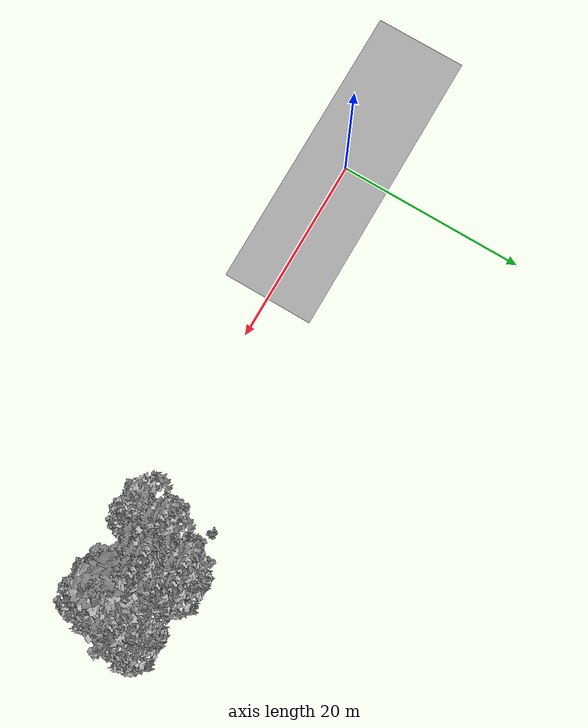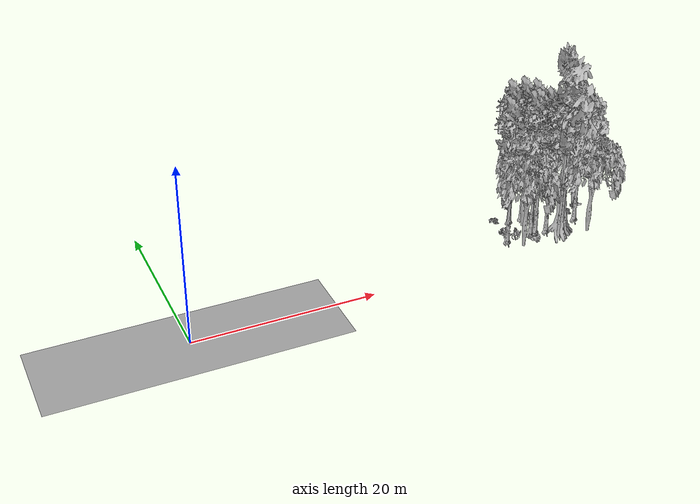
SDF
<sdf version="1.7">
 <world name="default">
  <model name="ground_plane">
   <static>1</static>
   <link name="link">
    <collision name="collision">
     <geometry><plane><normal>0 0 1</normal><size>100 100</size></plane></geometry>
     <surface><contact><ode><min_depth>0.01</min_depth><max_vel>0</max_vel></ode></contact></surface>
    </collision>
    <visual name="grass">
     <cast_shadows>0</cast_shadows>
     <geometry>
      <mesh>
       <scale>0.5814285714285714 0.18142857142857144 0.1</scale>
       <uri>file://grass_plane/meshes/grass_plane.dae</uri>
      </mesh>
     </geometry>
    </visual>
   </link>
  </model>
  <model name="Tree 0">
   <static>1</static>
   <pose>43.82342962723973 2.2307039787141427 0 1.57079 -0 0</pose>
   <link name="link">
    <collision name="collision">
     <geometry><mesh><scale>3.5 5 3.5</scale><uri>model://tree_9/meshes/tree_9.obj</uri></mesh></geometry>
    </collision>
    <visual name="visual">
     <geometry><mesh><scale>3.5 5 3.5</scale><uri>model://tree_9/meshes/tree_9.obj</uri></mesh></geometry>
    </visual>
   </link>
  </model>
  <model name="Tree 14">
   <static>1</static>
   <pose>40.112961565395935 6.885122554300562 0 1.57079 -0 0</pose>
   <link name="link">
    <collision name="collision">
     <geometry><mesh><scale>3.5 5 3.5</scale><uri>model://tree_9/meshes/tree_9.obj</uri></mesh></geometry>
    </collision>
    <visual name="visual">
     <geometry><mesh><scale>3.5 5 3.5</scale><uri>model://tree_9/meshes/tree_9.obj</uri></mesh></geometry>
    </visual>
   </link>
  </model>
  <model name="Tree 42">
   <static>1</static>
   <pose>44.1032392731708 2.605088315892978 0 1.57079 -0 0</pose>
   <link name="link">
    <collision name="collision">
     <geometry><mesh><scale>3.5 5 3.5</scale><uri>model://tree_4/meshes/tree_4.obj</uri></mesh></geometry>
    </collision>
    <visual name="visual">
     <geometry><mesh><scale>3.5 5 3.5</scale><uri>model://tree_4/meshes/tree_4.obj</uri></mesh></geometry>
    </visual>
   </link>
  </model>
  <model name="Tree 85">
   <static>1</static>
   <pose>37.88659279286162 3.4017882960833496 0 1.57079 -0 0</pose>
   <link name="link">
    <collision name="collision">
     <geometry><mesh><scale>3.5 5 3.5</scale><uri>model://tree_9/meshes/tree_9.obj</uri></mesh></geometry>
    </collision>
    <visual name="visual">
     <geometry><mesh><scale>3.5 5 3.5</scale><uri>model://tree_9/meshes/tree_9.obj</uri></mesh></geometry>
    </visual>
   </link>
  </model>
  <model name="Tree 94">
   <static>1</static>
   <pose>40.8558229229009 5.3101257212539 0 1.57079 -0 0</pose>
   <link name="link">
    <collision name="collision">
     <geometry><mesh><scale>3.5 5 3.5</scale><uri>model://tree_2/meshes/tree_2.obj</uri></mesh></geometry>
    </collision>
    <visual name="visual">
     <geometry><mesh><scale>3.5 5 3.5</scale><uri>model://tree_2/meshes/tree_2.obj</uri></mesh></geometry>
    </visual>
   </link>
  </model>
  <model name="Tree 164">
   <static>1</static>
   <pose>42.94231467640256 3.521662332798307 0 1.57079 -0 0</pose>
   <link name="link">
    <collision name="collision">
     <geometry><mesh><scale>3.5 5 3.5</scale><uri>model://tree_9/meshes/tree_9.obj</uri></mesh></geometry>
    </collision>
    <visual name="visual">
     <geometry><mesh><scale>3.5 5 3.5</scale><uri>model://tree_9/meshes/tree_9.obj</uri></mesh></geometry>
    </visual>
   </link>
  </model>
  <model name="Tree 171">
   <static>1</static>
   <pose>42.6032331874261 5.898446633228833 0 1.57079 -0 0</pose>
   <link name="link">
    <collision name="collision">
     <geometry><mesh><scale>3.5 5 3.5</scale><uri>model://tree_9/meshes/tree_9.obj</uri></mesh></geometry>
    </collision>
    <visual name="visual">
     <geometry><mesh><scale>3.5 5 3.5</scale><uri>model://tree_9/meshes/tree_9.obj</uri></mesh></geometry>
    </visual>
   </link>
  </model>
  <model name="Tree 183">
   <static>1</static>
   <pose>41.01342703136061 3.6695874571773395 0 1.57079 -0 0</pose>
   <link name="link">
    <collision name="collision">
     <geometry><mesh><scale>3.5 5 3.5</scale><uri>model://tree_9/meshes/tree_9.obj</uri></mesh></geometry>
    </collision>
    <visual name="visual">
     <geometry><mesh><scale>3.5 5 3.5</scale><uri>model://tree_9/meshes/tree_9.obj</uri></mesh></geometry>
    </visual>
   </link>
  </model>
  <model name="Tree 236">
   <static>1</static>
   <pose>42.02076271964137 6.951975163894552 0 1.57079 -0 0</pose>
   <link name="link">
    <collision name="collision">
     <geometry><mesh><scale>3.5 5 3.5</scale><uri>model://tree_2/meshes/tree_2.obj</uri></mesh></geometry>
    </collision>
    <visual name="visual">
     <geometry><mesh><scale>3.5 5 3.5</scale><uri>model://tree_2/meshes/tree_2.obj</uri></mesh></geometry>
    </visual>
   </link>
  </model>
  <model name="Tree 245">
   <static>1</static>
   <pose>47.01581063133591 1.4693122207834506 0 1.57079 -0 0</pose>
   <link name="link">
    <collision name="collision">
     <geometry><mesh><scale>3.5 5 3.5</scale><uri>model://tree_2/meshes/tree_2.obj</uri></mesh></geometry>
    </collision>
    <visual name="visual">
     <geometry><mesh><scale>3.5 5 3.5</scale><uri>model://tree_2/meshes/tree_2.obj</uri></mesh></geometry>
    </visual>
   </link>
  </model>
  <model name="Tree 276">
   <static>1</static>
   <pose>38.88984891022109 1.7052112096702565 0 1.57079 -0 0</pose>
   <link name="link">
    <collision name="collision">
     <geometry><mesh><scale>3.5 5 3.5</scale><uri>model://tree_2/meshes/tree_2.obj</uri></mesh></geometry>
    </collision>
    <visual name="visual">
     <geometry><mesh><scale>3.5 5 3.5</scale><uri>model://tree_2/meshes/tree_2.obj</uri></mesh></geometry>
    </visual>
   </link>
  </model>
  <model name="Tree 324">
   <static>1</static>
   <pose>41.76636186695259 6.953604829299909 0 1.57079 -0 0</pose>
   <link name="link">
    <collision name="collision">
     <geometry><mesh><scale>3.5 5 3.5</scale><uri>model://tree_9/meshes/tree_9.obj</uri></mesh></geometry>
    </collision>
    <visual name="visual">
     <geometry><mesh><scale>3.5 5 3.5</scale><uri>model://tree_9/meshes/tree_9.obj</uri></mesh></geometry>
    </visual>
   </link>
  </model>
  <model name="Tree 326">
   <static>1</static>
   <pose>47.23663071166888 4.3986350601553745 0 1.57079 -0 0</pose>
   <link name="link">
    <collision name="collision">
     <geometry><mesh><scale>3.5 5 3.5</scale><uri>model://tree_9/meshes/tree_9.obj</uri></mesh></geometry>
    </collision>
    <visual name="visual">
     <geometry><mesh><scale>3.5 5 3.5</scale><uri>model://tree_9/meshes/tree_9.obj</uri></mesh></geometry>
    </visual>
   </link>
  </model>
  <model name="Tree 344">
   <static>1</static>
   <pose>41.742064109454674 3.83990887690873 0 1.57079 -0 0</pose>
   <link name="link">
    <collision name="collision">
     <geometry><mesh><scale>3.5 5 3.5</scale><uri>model://tree_9/meshes/tree_9.obj</uri></mesh></geometry>
    </collision>
    <visual name="visual">
     <geometry><mesh><scale>3.5 5 3.5</scale><uri>model://tree_9/meshes/tree_9.obj</uri></mesh></geometry>
    </visual>
   </link>
  </model>
  <model name="Tree 355">
   <static>1</static>
   <pose>48.08895864473641 6.114934163455274 0 1.57079 -0 0</pose>
   <link name="link">
    <collision name="collision">
     <geometry><mesh><scale>3.5 5 3.5</scale><uri>model://tree_2/meshes/tree_2.obj</uri></mesh></geometry>
    </collision>
    <visual name="visual">
     <geometry><mesh><scale>3.5 5 3.5</scale><uri>model://tree_2/meshes/tree_2.obj</uri></mesh></geometry>
    </visual>
   </link>
  </model>
  <model name="Bush 2">
   <static>1</static>
   <pose>42.119154304616075 6.129272537993263 0 1.57079 -0 0</pose>
   <link name="link">
    <collision name="collision">
     <geometry><mesh><scale>2 2 2</scale><uri>model://bush_3/meshes/bush_3.obj</uri></mesh></geometry>
     <surface><contact><collide_without_contact>false</collide_without_contact></contact></surface>
    </collision>
    <visual name="visual">
     <geometry><mesh><scale>2 2 2</scale><uri>model://bush_3/meshes/bush_3.obj</uri></mesh></geometry>
    </visual>
   </link>
  </model>
  <model name="Bush 32">
   <static>1</static>
   <pose>40.6076251074837 1.956222226953301 0 1.57079 -0 0</pose>
   <link name="link">
    <collision name="collision">
     <geometry><mesh><scale>2 2 2</scale><uri>model://bush_3/meshes/bush_3.obj</uri></mesh></geometry>
     <surface><contact><collide_without_contact>false</collide_without_contact></contact></surface>
    </collision>
    <visual name="visual">
     <geometry><mesh><scale>2 2 2</scale><uri>model://bush_3/meshes/bush_3.obj</uri></mesh></geometry>
    </visual>
   </link>
  </model>
  <model name="Bush 41">
   <static>1</static>
   <pose>46.95867453396329 5.6565948841855835 0 1.57079 -0 0</pose>
   <link name="link">
    <collision name="collision">
     <geometry><mesh><scale>2 2 2</scale><uri>model://bush_2/meshes/bush_2.obj</uri></mesh></geometry>
     <surface><contact><collide_without_contact>false</collide_without_contact></contact></surface>
    </collision>
    <visual name="visual">
     <geometry><mesh><scale>2 2 2</scale><uri>model://bush_2/meshes/bush_2.obj</uri></mesh></geometry>
    </visual>
   </link>
  </model>
  <model name="Bush 146">
   <static>1</static>
   <pose>38.31933070850229 7.204396989402749 0 1.57079 -0 0</pose>
   <link name="link">
    <collision name="collision">
     <geometry><mesh><scale>2 2 2</scale><uri>model://bush_2/meshes/bush_2.obj</uri></mesh></geometry>
     <surface><contact><collide_without_contact>false</collide_without_contact></contact></surface>
    </collision>
    <visual name="visual">
     <geometry><mesh><scale>2 2 2</scale><uri>model://bush_2/meshes/bush_2.obj</uri></mesh></geometry>
    </visual>
   </link>
  </model>
  <model name="Bush 163">
   <static>1</static>
   <pose>38.75695867404485 2.988358164105964 0 1.57079 -0 0</pose>
   <link name="link">
    <collision name="collision">
     <geometry><mesh><scale>2 2 2</scale><uri>model://bush_4/meshes/bush_4.obj</uri></mesh></geometry>
     <surface><contact><collide_without_contact>false</collide_without_contact></contact></surface>
    </collision>
    <visual name="visual">
     <geometry><mesh><scale>2 2 2</scale><uri>model://bush_4/meshes/bush_4.obj</uri></mesh></geometry>
    </visual>
   </link>
  </model>
  <model name="Bush 242">
   <static>1</static>
   <pose>37.72650864981371 3.7912402524476754 0 1.57079 -0 0</pose>
   <link name="link">
    <collision name="collision">
     <geometry><mesh><scale>2 2 2</scale><uri>model://bush_0/meshes/bush_0.obj</uri></mesh></geometry>
     <surface><contact><collide_without_contact>false</collide_without_contact></contact></surface>
    </collision>
    <visual name="visual">
     <geometry><mesh><scale>2 2 2</scale><uri>model://bush_0/meshes/bush_0.obj</uri></mesh></geometry>
    </visual>
   </link>
  </model>
  <model name="Bush 258">
   <static>1</static>
   <pose>48.07633281423797 5.515306330334067 0 1.57079 -0 0</pose>
   <link name="link">
    <collision name="collision">
     <geometry><mesh><scale>2 2 2</scale><uri>model://bush_0/meshes/bush_0.obj</uri></mesh></geometry>
     <surface><contact><collide_without_contact>false</collide_without_contact></contact></surface>
    </collision>
    <visual name="visual">
     <geometry><mesh><scale>2 2 2</scale><uri>model://bush_0/meshes/bush_0.obj</uri></mesh></geometry>
    </visual>
   </link>
  </model>
 </world>
</sdf>
